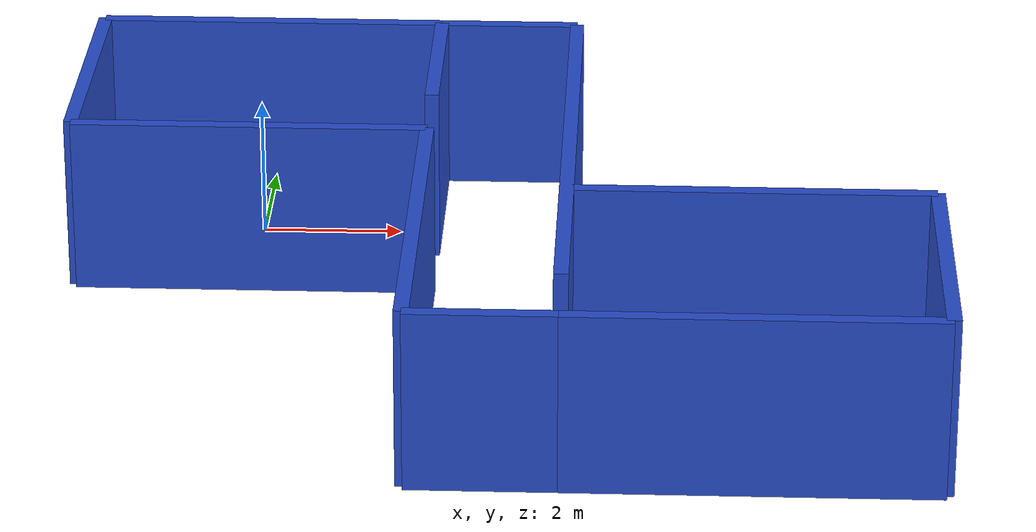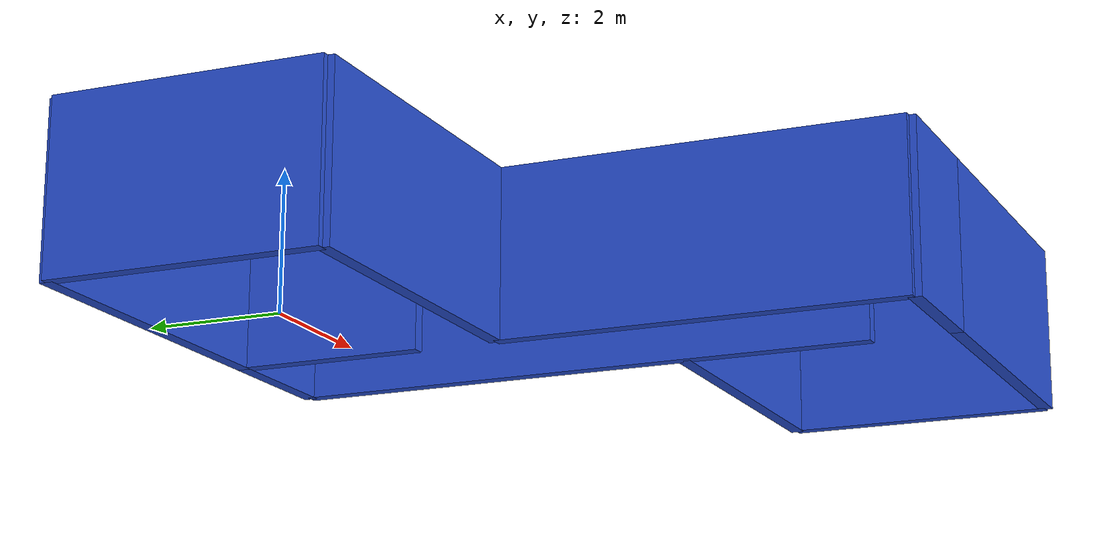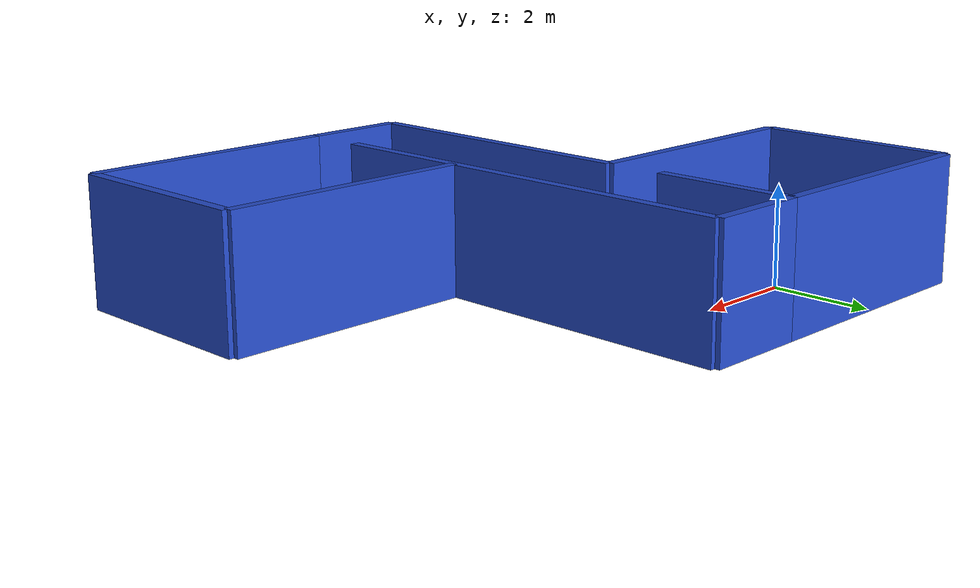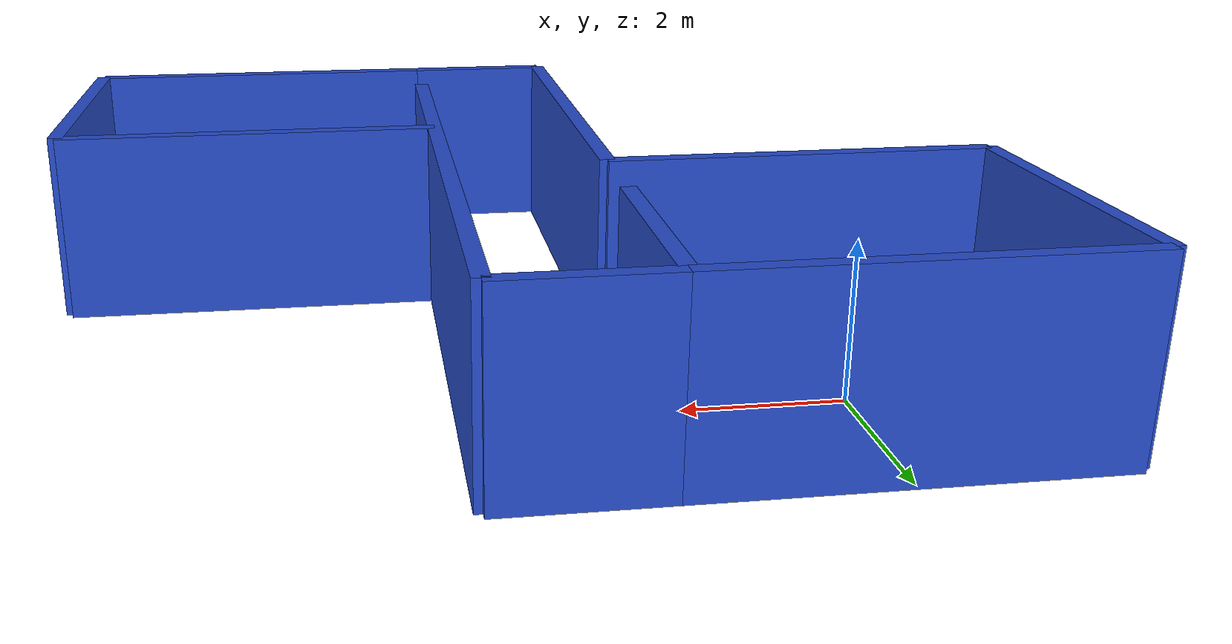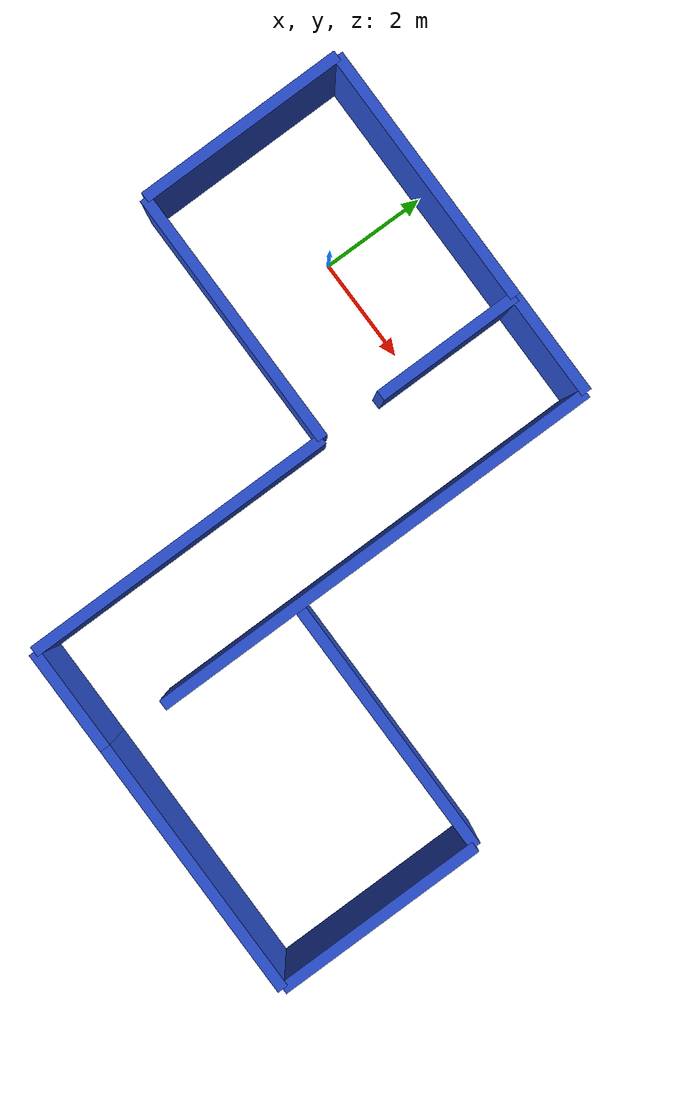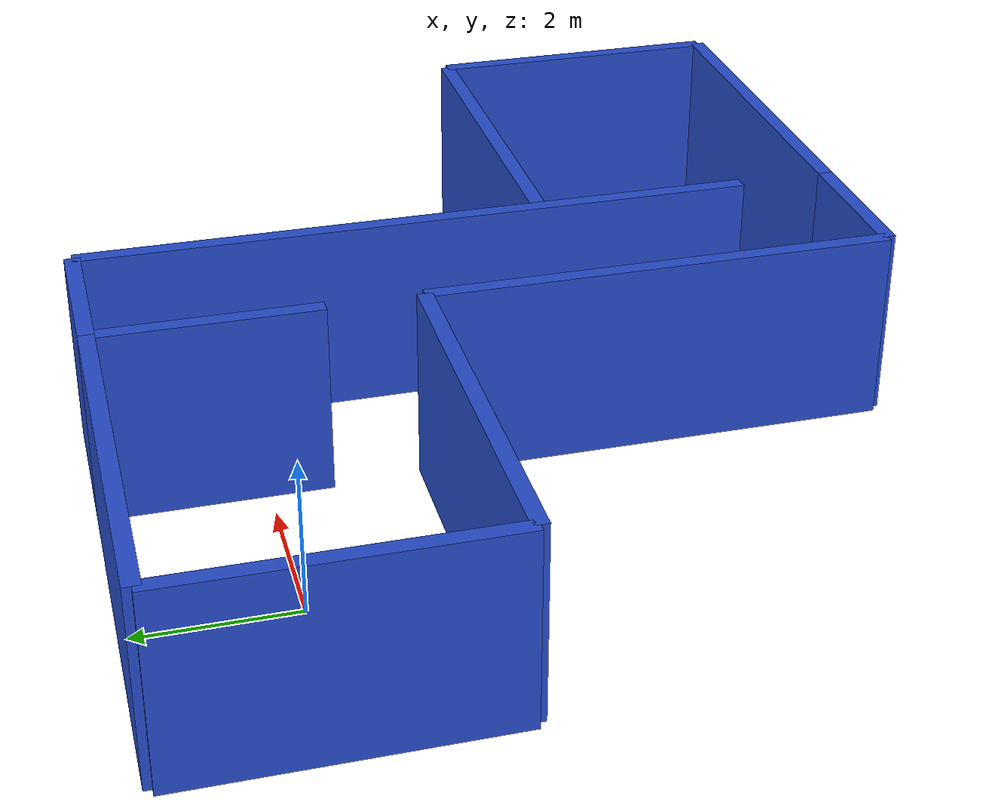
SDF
<?xml version='1.0'?>
<sdf version='1.4'>
  <model name="home_hallway">
    <static>1</static>
    <link name ="lwest_wall">
      <visual name="lwest_wall">
	<pose>-2.5 0 1.25 0 -0 0</pose>
        <geometry>
          <box>
            <size>0.2 4 2.5</size>
          </box>
        </geometry>
        <material>
          <script>
            <uri>file://media/materials/scripts/gazebo.material</uri>
            <name>Gazebo/Blue</name>
          </script>
        </material>
      </visual>
      <collision name='lwest_wall'>
        <geometry>
          <box>
	    <size>0.2 4 2.5</size>
          </box>
        </geometry>
        <pose>-2.5 0 1.25 0 -0 0</pose>
      </collision>
     </link>

     <link name ="lnorth_wall">
      <visual name="lnorth_wall">
	<pose>0 2 1.25 0 -0 0</pose>
        <geometry>
          <box>
            <size>5 0.2 2.5</size>
          </box>
        </geometry>
        <material>
          <script>
            <uri>file://media/materials/scripts/gazebo.material</uri>
            <name>Gazebo/Blue</name>
          </script>
        </material>
      </visual>
      <collision name='lnorth_wall'>
        <geometry>
          <box>
	    <size>5 0.2 2.5</size>
          </box>
        </geometry>
        <pose>0 2 1.25 0 -0 0</pose>
      </collision>
    </link>

    <link name ="lsouth_wall">
      <visual name="lsouth_wall">
	<pose>0 -2 1.25 0 -0 0</pose>
        <geometry>
          <box>
            <size>5 0.2 2.5</size>
          </box>
        </geometry>
        <material>
          <script>
            <uri>file://media/materials/scripts/gazebo.material</uri>
            <name>Gazebo/Blue</name>
          </script>
        </material>
      </visual>
      <collision name='lsouth_wall'>
        <geometry>
          <box>
	    <size>5 0.2 2.5</size>
          </box>
        </geometry>
        <pose>0 -2 1.25 0 -0 0</pose>
      </collision>
    </link>

    <link name ="least_wall">
      <visual name="least_wall">
	<pose>2.5 0.6 1.25 0 -0 0</pose>
        <geometry>
          <box>
            <size>0.2 2.8 2.5</size>
          </box>
        </geometry>
        <material>
          <script>
            <uri>file://media/materials/scripts/gazebo.material</uri>
            <name>Gazebo/Blue</name>
          </script>
        </material>
      </visual>
      <collision name='least_wall'>
        <geometry>
          <box>
	    <size>0.2 2.8 2.5</size>
          </box>
        </geometry>
        <pose>2.5 0.6 1.25 0 -0 0</pose>
      </collision>
     </link>

     <link name ="cnorth_wall">
      <visual name="cnorth_wall">
	<pose>3.5 2 1.25 0 -0 0</pose>
        <geometry>
          <box>
            <size>2 0.2 2.5</size>
          </box>
        </geometry>
        <material>
          <script>
            <uri>file://media/materials/scripts/gazebo.material</uri>
            <name>Gazebo/Blue</name>
          </script>
        </material>
      </visual>
      <collision name='cnorth_wall'>
        <geometry>
          <box>
	    <size>2 0.2 2.5</size>
          </box>
        </geometry>
        <pose>3.5 2 1.25 0 -0 0</pose>
      </collision>
     </link>

     <link name ="ceast_wall">
      <visual name="ceast_wall">
	<pose>4.5 -2.4 1.25 0 -0 0</pose>
        <geometry>
          <box>
            <size>0.2 8.8 2.5</size>
          </box>
        </geometry>
        <material>
          <script>
            <uri>file://media/materials/scripts/gazebo.material</uri>
            <name>Gazebo/Blue</name>
          </script>
        </material>
      </visual>
      <collision name='ceast_wall'>
        <geometry>
          <box>
	    <size>0.2 8.8 2.5</size>
          </box>
        </geometry>
        <pose>4.5 -2.4 1.25 0 -0 0</pose>
      </collision>
     </link>

     <link name ="cwest_wall">
      <visual name="cwest_wall">
	<pose>2.5 -5 1.25 0 -0 0</pose>
        <geometry>
          <box>
            <size>0.2 6 2.5</size>
          </box>
        </geometry>
        <material>
          <script>
            <uri>file://media/materials/scripts/gazebo.material</uri>
            <name>Gazebo/Blue</name>
          </script>
        </material>
      </visual>
      <collision name='cwest_wall'>
        <geometry>
          <box>
	    <size>0.2 6 2.5</size>
          </box>
        </geometry>
        <pose>2.5 -5 1.25 0 -0 0</pose>
      </collision>
     </link>

     <link name ="csouth_wall">
      <visual name="csouth_wall">
	<pose>3.5 -8 1.25 0 -0 0</pose>
        <geometry>
          <box>
            <size>2 0.2 2.5</size>
          </box>
        </geometry>
        <material>
          <script>
            <uri>file://media/materials/scripts/gazebo.material</uri>
            <name>Gazebo/Blue</name>
          </script>
        </material>
      </visual>
      <collision name='csouth_wall'>
        <geometry>
          <box>
	    <size>2 0.2 2.5</size>
          </box>
        </geometry>
        <pose>3.5 -8 1.25 0 -0 0</pose>
      </collision>
     </link>

     <link name ="ksouth_wall">
      <visual name="ksouth_wall">
	<pose>7 -8 1.25 0 -0 0</pose>
        <geometry>
          <box>
            <size>5 0.2 2.5</size>
          </box>
        </geometry>
        <material>
          <script>
            <uri>file://media/materials/scripts/gazebo.material</uri>
            <name>Gazebo/Blue</name>
          </script>
        </material>
      </visual>
      <collision name='ksouth_wall'>
        <geometry>
          <box>
	    <size>5 0.2 2.5</size>
          </box>
        </geometry>
        <pose>7 -8 1.25 0 -0 0</pose>
      </collision>
     </link>

     <link name ="kwest_wall">
      <visual name="kwest_wall">
	<pose>9.5 -6 1.25 0 -0 0</pose>
        <geometry>
          <box>
            <size>0.2 4 2.5</size>
          </box>
        </geometry>
        <material>
          <script>
            <uri>file://media/materials/scripts/gazebo.material</uri>
            <name>Gazebo/Blue</name>
          </script>
        </material>
      </visual>
      <collision name='kwest_wall'>
        <geometry>
          <box>
	    <size>0.2 4 2.5</size>
          </box>
        </geometry>
        <pose>9.5 -6 1.25 0 -0 0</pose>
      </collision>
     </link>

     <link name ="knorth_wall">
      <visual name="knorth_wall">
	<pose>7 -4 1.25 0 -0 0</pose>
        <geometry>
          <box>
            <size>5 0.2 2.5</size>
          </box>
        </geometry>
        <material>
          <script>
            <uri>file://media/materials/scripts/gazebo.material</uri>
            <name>Gazebo/Blue</name>
          </script>
        </material>
      </visual>
      <collision name='knorth_wall'>
        <geometry>
          <box>
	    <size>5 0.2 2.5</size>
          </box>
        </geometry>
        <pose>7 -4 1.25 0 -0 0</pose>
      </collision>
     </link>

  </model>
</sdf>
